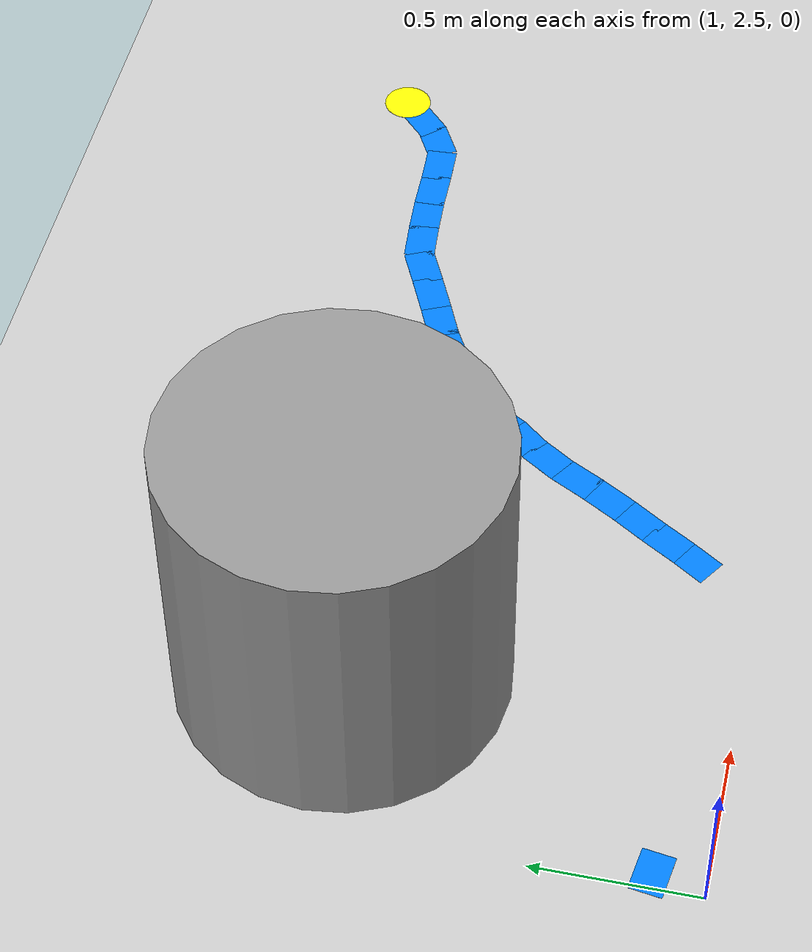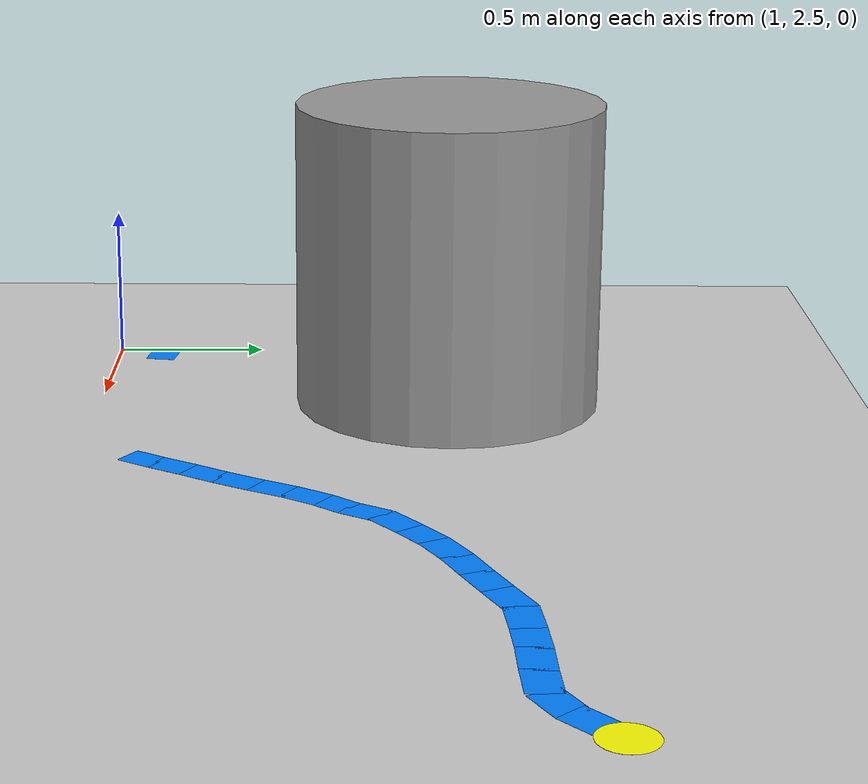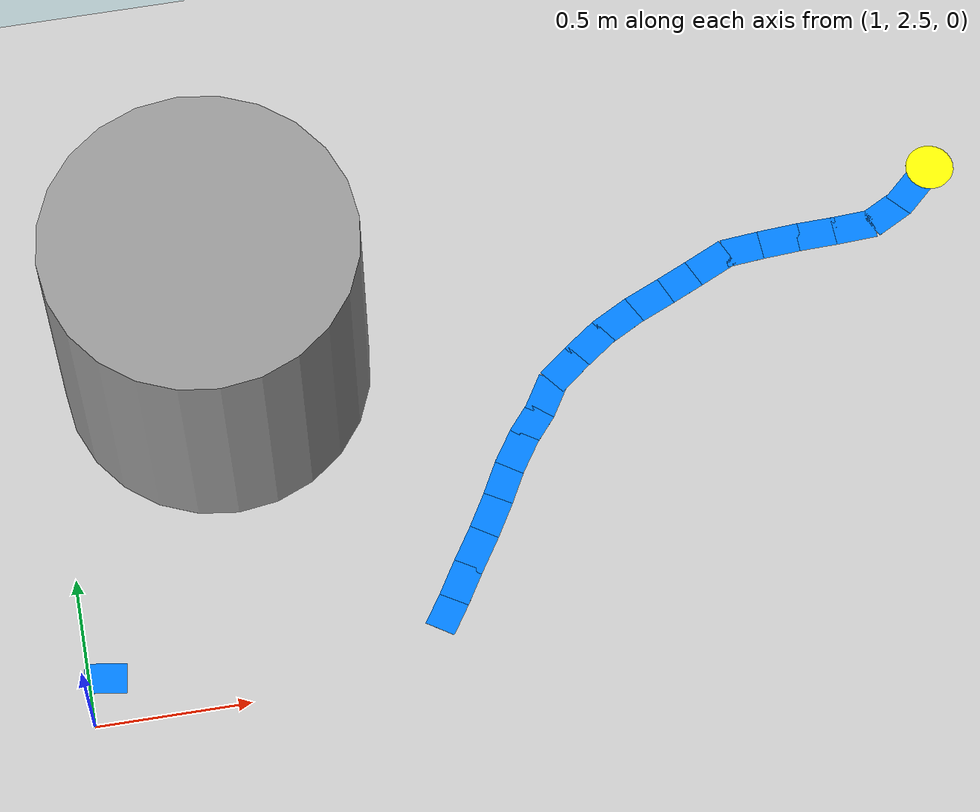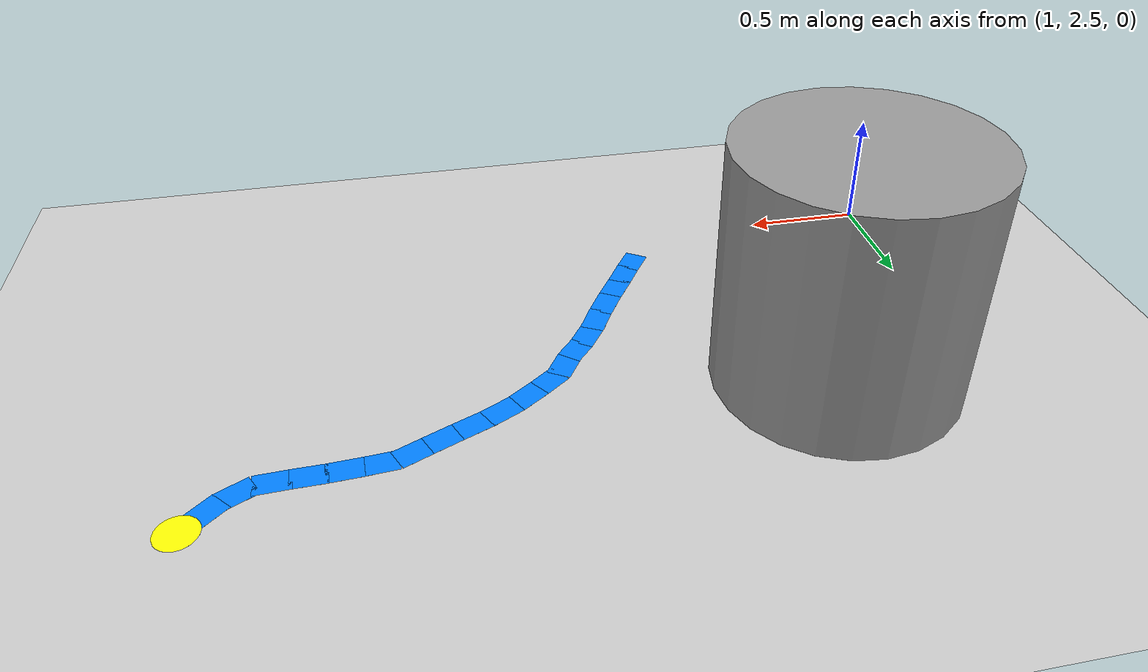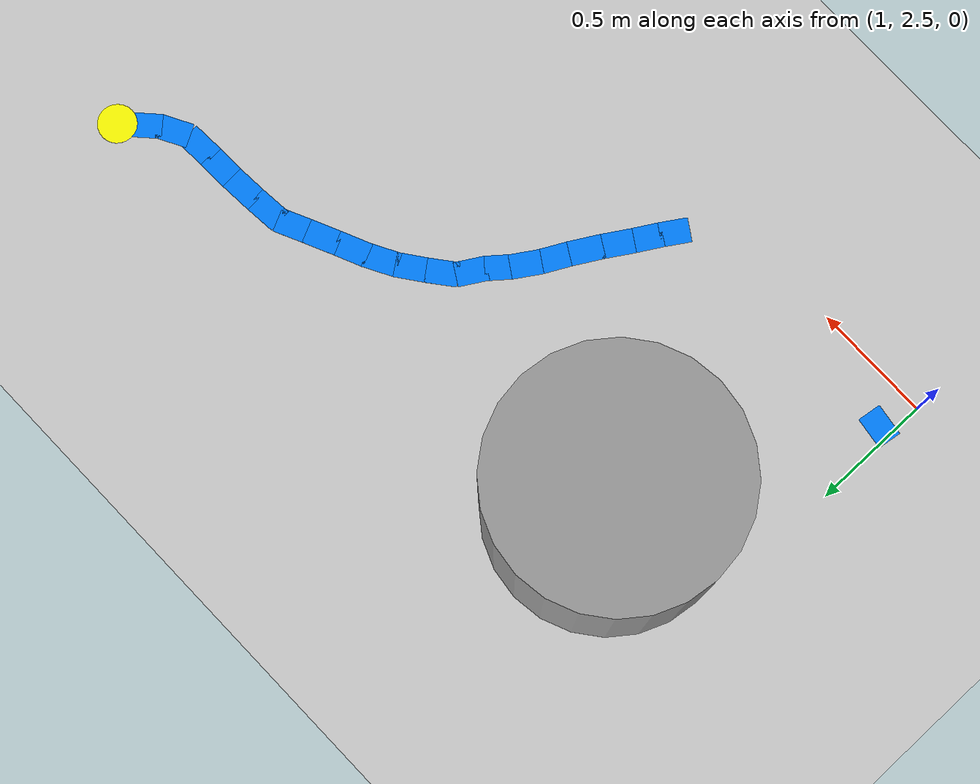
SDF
<sdf version="1.6">
 <world name="default">
  <include><uri>model://sun</uri></include>
  <include><uri>model://ground_plane</uri></include>
  <model name="obstacle_18">
   <static>true</static>
   <pose>1.5500000000000007 3.6500000000000004 0.5 0 0 0</pose>
   <link name="link">
    <visual name="visual">
     <geometry><cylinder><radius>0.5</radius><length>1.0</length></cylinder></geometry>
     <material>
      <script><uri>file://media/materials/scripts/gazebo.material</uri><name>Gazebo/Grey</name></script>
     </material>
    </visual>
    <collision name="collision">
     <geometry><cylinder><radius>0.5</radius><length>1.0</length></cylinder></geometry>
    </collision>
   </link>
  </model>
  <model name="yellow_dot_marker_7">
   <static>true</static>
   <pose>4.0 4.0 0.00015 0 0 0</pose>
   <link name="link">
    <visual name="visual">
     <geometry><cylinder><radius>0.08</radius><length>0.0001</length></cylinder></geometry>
     <material><ambient>1 1 0 1</ambient><diffuse>1 1 0 1</diffuse></material>
    </visual>
   </link>
  </model>
  <model name="painted_floor_segment_232">
   <static>true</static>
   <pose>1.0516281127929692 2.656015014648438 0.0001 0 0 -0.14615308727511364</pose>
   <link name="link">
    <visual name="visual">
     <geometry><box><size>0.13664388296978672 0.1 0.0001</size></box></geometry>
     <material><ambient>0 0.5 1 1.0</ambient><diffuse>0 0.5 1 1.0</diffuse></material>
    </visual>
   </link>
  </model>
  <model name="painted_floor_segment_242">
   <static>true</static>
   <pose>2.158468627929688 2.697191238403321 0.0001 0 0 0.9908153267760816</pose>
   <link name="link">
    <visual name="visual">
     <geometry><box><size>0.12117556050812436 0.1 0.0001</size></box></geometry>
     <material><ambient>0 0.5 1 1.0</ambient><diffuse>0 0.5 1 1.0</diffuse></material>
    </visual>
   </link>
  </model>
  <model name="painted_floor_segment_243">
   <static>true</static>
   <pose>2.218408584594727 2.792551040649415 0.0001 0 0 1.0276428169913951</pose>
   <link name="link">
    <visual name="visual">
     <geometry><box><size>0.12665998721943267 0.1 0.0001</size></box></geometry>
     <material><ambient>0 0.5 1 1.0</ambient><diffuse>0 0.5 1 1.0</diffuse></material>
    </visual>
   </link>
  </model>
  <model name="painted_floor_segment_244">
   <static>true</static>
   <pose>2.2818725585937503 2.8944126129150396 0.0001 0 0 1.0006673887452595</pose>
   <link name="link">
    <visual name="visual">
     <geometry><box><size>0.13739566819332902 0.1 0.0001</size></box></geometry>
     <material><ambient>0 0.5 1 1.0</ambient><diffuse>0 0.5 1 1.0</diffuse></material>
    </visual>
   </link>
  </model>
  <model name="painted_floor_segment_245">
   <static>true</static>
   <pose>2.3472419738769537 3.0008411407470703 0.0001 0 0 1.039314987371183</pose>
   <link name="link">
    <visual name="visual">
     <geometry><box><size>0.13743724557879286 0.1 0.0001</size></box></geometry>
     <material><ambient>0 0.5 1 1.0</ambient><diffuse>0 0.5 1 1.0</diffuse></material>
    </visual>
   </link>
  </model>
  <model name="painted_floor_segment_246">
   <static>true</static>
   <pose>2.4083084106445316 3.109783935546875 0.0001 0 0 1.0804925933440086</pose>
   <link name="link">
    <visual name="visual">
     <geometry><box><size>0.13738014596670184 0.1 0.0001</size></box></geometry>
     <material><ambient>0 0.5 1 1.0</ambient><diffuse>0 0.5 1 1.0</diffuse></material>
    </visual>
   </link>
  </model>
  <model name="painted_floor_segment_247">
   <static>true</static>
   <pose>2.4694900512695312 3.213134384155273 0.0001 0 0 0.9885247392451264</pose>
   <link name="link">
    <visual name="visual">
     <geometry><box><size>0.1271235981713274 0.1 0.0001</size></box></geometry>
     <material><ambient>0 0.5 1 1.0</ambient><diffuse>0 0.5 1 1.0</diffuse></material>
    </visual>
   </link>
  </model>
  <model name="painted_floor_segment_248">
   <static>true</static>
   <pose>2.533791732788086 3.300394439697266 0.0001 0 0 0.8756560142769293</pose>
   <link name="link">
    <visual name="visual">
     <geometry><box><size>0.11171946425708365 0.1 0.0001</size></box></geometry>
     <material><ambient>0 0.5 1 1.0</ambient><diffuse>0 0.5 1 1.0</diffuse></material>
    </visual>
   </link>
  </model>
  <model name="painted_floor_segment_249">
   <static>true</static>
   <pose>2.5964302062988285 3.3890087127685558 0.0001 0 0 1.0252987826000828</pose>
   <link name="link">
    <visual name="visual">
     <geometry><box><size>0.12768606671818752 0.1 0.0001</size></box></geometry>
     <material><ambient>0 0.5 1 1.0</ambient><diffuse>0 0.5 1 1.0</diffuse></material>
    </visual>
   </link>
  </model>
  <model name="painted_floor_segment_250">
   <static>true</static>
   <pose>2.6727939605712896 3.4750820159912115 0.0001 0 0 0.6675412616687555</pose>
   <link name="link">
    <visual name="visual">
     <geometry><box><size>0.12956220208532201 0.1 0.0001</size></box></geometry>
     <material><ambient>0 0.5 1 1.0</ambient><diffuse>0 0.5 1 1.0</diffuse></material>
    </visual>
   </link>
  </model>
  <model name="painted_floor_segment_251">
   <static>true</static>
   <pose>2.7688339233398445 3.5479099273681642 0.0001 0 0 0.6308945665009819</pose>
   <link name="link">
    <visual name="visual">
     <geometry><box><size>0.13564919135049874 0.1 0.0001</size></box></geometry>
     <material><ambient>0 0.5 1 1.0</ambient><diffuse>0 0.5 1 1.0</diffuse></material>
    </visual>
   </link>
  </model>
  <model name="painted_floor_segment_252">
   <static>true</static>
   <pose>2.8735420227050783 3.6140712738037113 0.0001 0 0 0.4970316448004369</pose>
   <link name="link">
    <visual name="visual">
     <geometry><box><size>0.13745259179007263 0.1 0.0001</size></box></geometry>
     <material><ambient>0 0.5 1 1.0</ambient><diffuse>0 0.5 1 1.0</diffuse></material>
    </visual>
   </link>
  </model>
  <model name="painted_floor_segment_253">
   <static>true</static>
   <pose>2.9856727600097654 3.669016265869141 0.0001 0 0 0.4142257440810386</pose>
   <link name="link">
    <visual name="visual">
     <geometry><box><size>0.13749472007355817 0.1 0.0001</size></box></geometry>
     <material><ambient>0 0.5 1 1.0</ambient><diffuse>0 0.5 1 1.0</diffuse></material>
    </visual>
   </link>
  </model>
  <model name="painted_floor_segment_254">
   <static>true</static>
   <pose>3.099749755859375 3.720104598999024 0.0001 0 0 0.4278878016116596</pose>
   <link name="link">
    <visual name="visual">
     <geometry><box><size>0.13749918875487593 0.1 0.0001</size></box></geometry>
     <material><ambient>0 0.5 1 1.0</ambient><diffuse>0 0.5 1 1.0</diffuse></material>
    </visual>
   </link>
  </model>
  <model name="painted_floor_segment_255">
   <static>true</static>
   <pose>3.213223266601563 3.7725288391113283 0.0001 0 0 0.43768098102006486</pose>
   <link name="link">
    <visual name="visual">
     <geometry><box><size>0.13750004758591924 0.1 0.0001</size></box></geometry>
     <material><ambient>0 0.5 1 1.0</ambient><diffuse>0 0.5 1 1.0</diffuse></material>
    </visual>
   </link>
  </model>
  <model name="painted_floor_segment_256">
   <static>true</static>
   <pose>3.3320877075195323 3.804524230957031 0.0001 0 0 0.08820193384756644</pose>
   <link name="link">
    <visual name="visual">
     <geometry><box><size>0.13749737999327266 0.1 0.0001</size></box></geometry>
     <material><ambient>0 0.5 1 1.0</ambient><diffuse>0 0.5 1 1.0</diffuse></material>
    </visual>
   </link>
  </model>
  <model name="painted_floor_segment_257">
   <static>true</static>
   <pose>3.4567211151123054 3.813912200927734 0.0001 0 0 0.06216333518768016</pose>
   <link name="link">
    <visual name="visual">
     <geometry><box><size>0.13749618243132294 0.1 0.0001</size></box></geometry>
     <material><ambient>0 0.5 1 1.0</ambient><diffuse>0 0.5 1 1.0</diffuse></material>
    </visual>
   </link>
  </model>
  <model name="painted_floor_segment_258">
   <static>true</static>
   <pose>3.5815708160400392 3.8193412780761724 0.0001 0 0 0.024749627305878836</pose>
   <link name="link">
    <visual name="visual">
     <geometry><box><size>0.1374808403481097 0.1 0.0001</size></box></geometry>
     <material><ambient>0 0.5 1 1.0</ambient><diffuse>0 0.5 1 1.0</diffuse></material>
    </visual>
   </link>
  </model>
  <model name="painted_floor_segment_259">
   <static>true</static>
   <pose>3.7064544677734377 3.8239482879638675 0.0001 0 0 0.04899869346338834</pose>
   <link name="link">
    <visual name="visual">
     <geometry><box><size>0.1374702891186736 0.1 0.0001</size></box></geometry>
     <material><ambient>0 0.5 1 1.0</ambient><diffuse>0 0.5 1 1.0</diffuse></material>
    </visual>
   </link>
  </model>
  <model name="painted_floor_segment_260">
   <static>true</static>
   <pose>3.82195053100586 3.8554325103759766 0.0001 0 0 0.49159737281087296</pose>
   <link name="link">
    <visual name="visual">
     <geometry><box><size>0.13247356503724939 0.1 0.0001</size></box></geometry>
     <material><ambient>0 0.5 1 1.0</ambient><diffuse>0 0.5 1 1.0</diffuse></material>
    </visual>
   </link>
  </model>
  <model name="painted_floor_segment_261">
   <static>true</static>
   <pose>3.9375175476074222 3.9419281005859377 0.0001 0 0 0.7488288762595033</pose>
   <link name="link">
    <visual name="visual">
     <geometry><box><size>0.1876640280271394 0.1 0.0001</size></box></geometry>
     <material><ambient>0 0.5 1 1.0</ambient><diffuse>0 0.5 1 1.0</diffuse></material>
    </visual>
   </link>
  </model>
  <model name="painted_floor_segment_262">
   <static>true</static>
   <pose>4.0 4.0 0.0001 0 0 0.0</pose>
   <link name="link">
    <visual name="visual">
     <geometry><box><size>0.0 0.1 0.0001</size></box></geometry>
     <material><ambient>0 0.5 1 1.0</ambient><diffuse>0 0.5 1 1.0</diffuse></material>
    </visual>
   </link>
  </model>
 </world>
</sdf>
